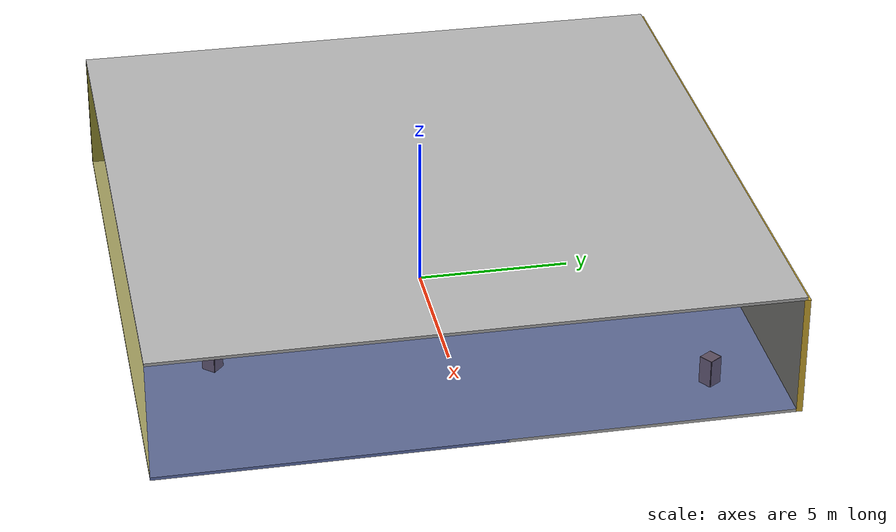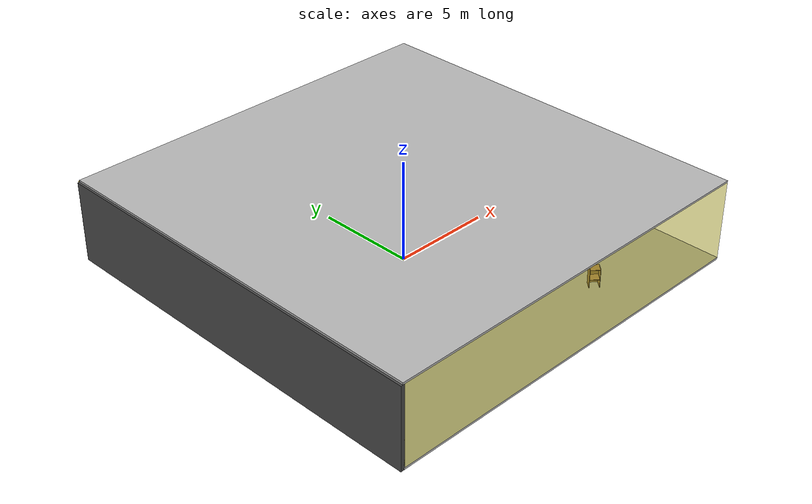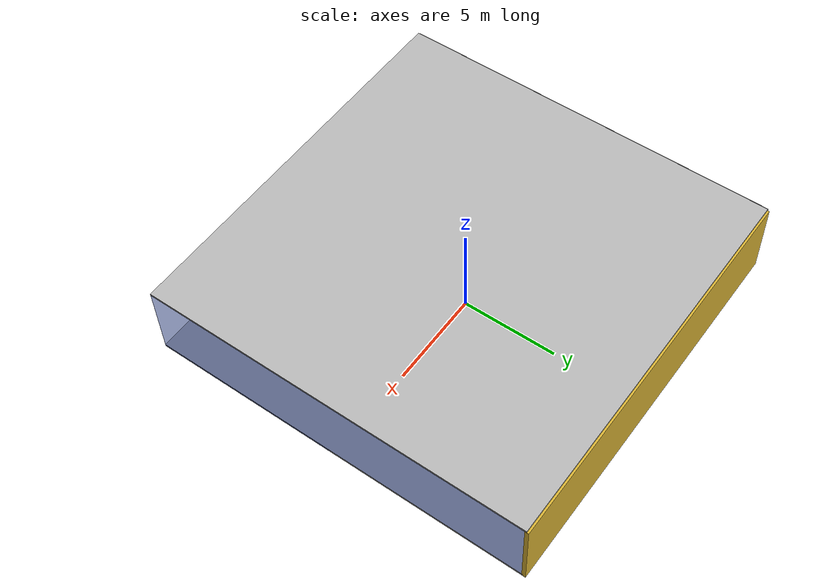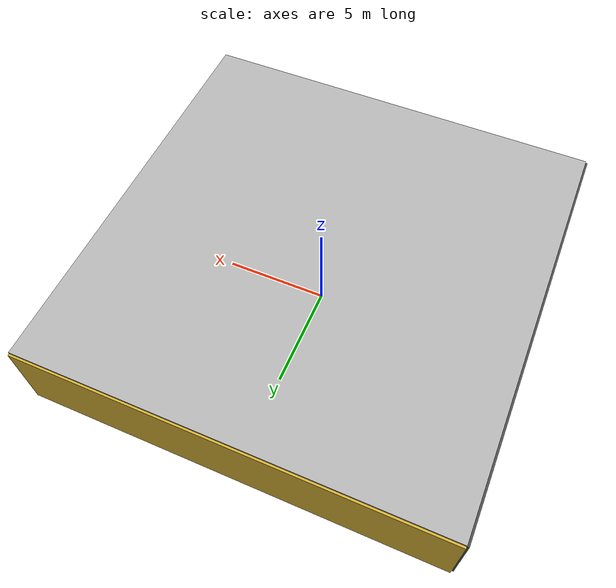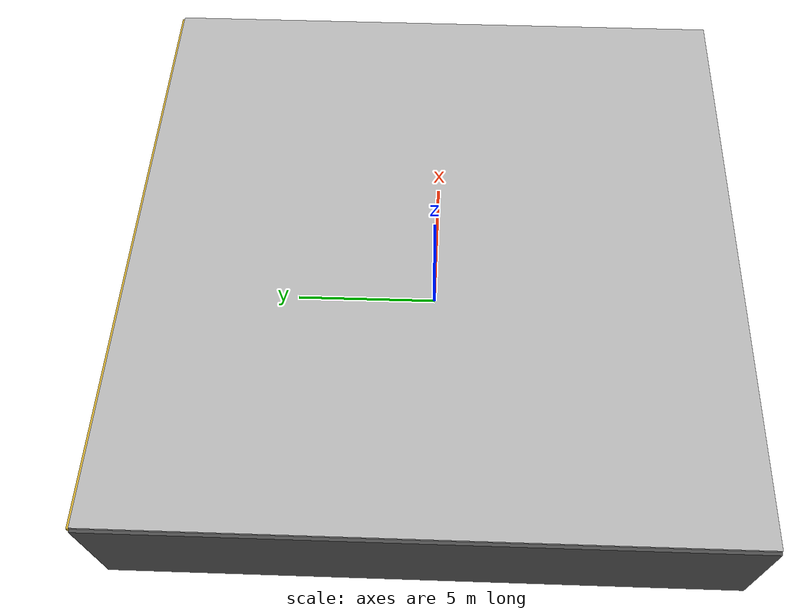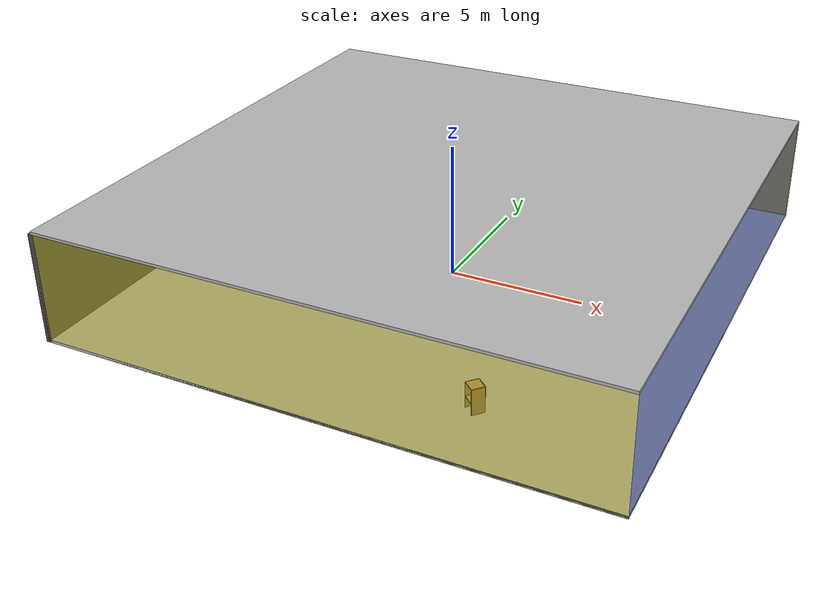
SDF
<sdf version="1.4">
 <world name="default">
  <physics type="ode">
   <max_step_size>0.001</max_step_size>
   <real_time_factor>1</real_time_factor>
   <real_time_update_rate>1000</real_time_update_rate>
   <gravity>0 0 -9.8</gravity>
  </physics>
  <scene><ambient>0.4 0.4 0.4 1</ambient><background>0.7 0.7 0.7 1</background><shadows>1</shadows></scene>
  <model name="Surrounding">
   <static>1</static>
   <link name="Ceiling">
    <collision name="Ceiling_Collision"><geometry><box><size>20 20 0.1</size></box></geometry></collision>
    <visual name="Ceiling_Visual">
     <geometry><box><size>20 20 0.1</size></box></geometry>
     <material>
      <script><uri>file://media/materials/scripts/gazebo.material</uri><name>Gazebo/JointAnchor</name></script>
     </material>
    </visual>
    <pose>0 0 4.05 0 0 0</pose>
   </link>
   <link name="Wall_South">
    <collision name="Wall_South_Collision">
     <geometry><box><size>20 0 4</size></box></geometry>
     <pose>0 0 2 0 -0 0</pose>
    </collision>
    <visual name="Wall_South_Visual">
     <pose>0 0 2 0 -0 0</pose>
     <geometry><box><size>20 0 4</size></box></geometry>
     <material>
      <script>
       <uri>file://media/materials/scripts/gazebo.material</uri>
       <name>Gazebo/YellowTransparent</name>
      </script>
     </material>
    </visual>
    <velocity_decay><linear>0</linear><angular>0</angular></velocity_decay>
    <pose>0 -10 0 0 -0 0</pose>
   </link>
   <link name="Wall_East">
    <collision name="Wall_21_Collision">
     <geometry><box><size>20 0 4</size></box></geometry>
     <pose>0 0 2 0 -0 0</pose>
    </collision>
    <visual name="Wall_21_Visual">
     <pose>0 0 2 0 -0 0</pose>
     <geometry><box><size>20 0 4</size></box></geometry>
     <material>
      <script><uri>file://media/materials/scripts/gazebo.material</uri><name>Gazebo/BlueTransparent</name></script>
     </material>
    </visual>
    <velocity_decay><linear>0</linear><angular>0</angular></velocity_decay>
    <pose>10 0 0 0 -0 1.5708</pose>
   </link>
   <link name="Wall_North">
    <collision name="Wall_22_Collision">
     <geometry><box><size>20 0.2 4</size></box></geometry>
     <pose>0 0 2 0 -0 0</pose>
    </collision>
    <visual name="Wall_22_Visual">
     <pose>0 0 2 0 -0 0</pose>
     <geometry><box><size>20 0.2 4</size></box></geometry>
     <material>
      <script><uri>file://media/materials/scripts/gazebo.material</uri><name>Gazebo/Gold</name></script>
     </material>
    </visual>
    <velocity_decay><linear>0</linear><angular>0</angular></velocity_decay>
    <pose>0 10 0 0 -0 0</pose>
   </link>
   <link name="Wall_West">
    <collision name="Wall_23_Collision">
     <geometry><box><size>20 0.2 4</size></box></geometry>
     <pose>0 0 2 0 -0 0</pose>
    </collision>
    <visual name="Wall_23_Visual">
     <pose>0 0 2 0 -0 0</pose>
     <geometry><box><size>20 0.2 4</size></box></geometry>
     <material>
      <script><uri>file://media/materials/scripts/gazebo.material</uri><name>Gazebo/DarkGrey</name></script>
     </material>
    </visual>
    <velocity_decay><linear>0</linear><angular>0</angular></velocity_decay>
    <pose>-10 0 0 0 0 -1.5708</pose>
   </link>
   <link name="Ground_link">
    <collision name="collision">
     <pose>0 0 .05 0 -0 0</pose>
     <geometry><box><size>20 20 0.1</size></box></geometry>
    </collision>
    <visual name="visual">
     <pose>0 0 .05 0 -0 0</pose>
     <geometry><box><size>20 20 0.1</size></box></geometry>
     <material>
      <script><uri>file://media/materials/scripts/gazebo.material</uri><name>Gazebo/Pioneer2Body</name></script>
     </material>
    </visual>
   </link>
   <static>1</static>
  </model>
  <spherical_coordinates>
   <surface_model>EARTH_WGS84</surface_model>
   <latitude_deg>0</latitude_deg>
   <longitude_deg>0</longitude_deg>
   <elevation>0</elevation>
   <heading_deg>0</heading_deg>
  </spherical_coordinates>
  <light name="lightball_0" type="diffuse">
   <diffuse>0.8 0.8 0.8 1</diffuse>
   <specular>0.2 0.2 0.2 1</specular>
   <attenuation>
    <range>100</range>
    <constant>0.7</constant>
    <linear>0.01</linear>
    <quadratic>0.001</quadratic>
   </attenuation>
   <direction>-0.5 0.1 -0.9</direction>
   <pose>-8.51337061033 -4.0215625818 1.47221241157 0 0 0</pose>
  </light>
  <light name="lightball_1" type="diffuse">
   <diffuse>0.8 0.8 0.8 1</diffuse>
   <specular>0.2 0.2 0.2 1</specular>
   <attenuation>
    <range>100</range>
    <constant>0.7</constant>
    <linear>0.01</linear>
    <quadratic>0.001</quadratic>
   </attenuation>
   <direction>-0.5 0.1 -0.9</direction>
   <pose>-2.34088809492 7.23909209424 3.74681462518 0 0 0</pose>
  </light>
  <light name="lightball_2" type="diffuse">
   <diffuse>0.8 0.8 0.8 1</diffuse>
   <specular>0.2 0.2 0.2 1</specular>
   <attenuation>
    <range>100</range>
    <constant>0.7</constant>
    <linear>0.01</linear>
    <quadratic>0.001</quadratic>
   </attenuation>
   <direction>-0.5 0.1 -0.9</direction>
   <pose>-7.33057111157 4.83647247057 2.58952575034 0 0 0</pose>
  </light>
  <light name="lightball_3" type="diffuse">
   <diffuse>0.8 0.8 0.8 1</diffuse>
   <specular>0.2 0.2 0.2 1</specular>
   <attenuation>
    <range>100</range>
    <constant>0.7</constant>
    <linear>0.01</linear>
    <quadratic>0.001</quadratic>
   </attenuation>
   <direction>-0.5 0.1 -0.9</direction>
   <pose>-9.97470775922 -7.15487826932 1.21574383395 0 0 0</pose>
  </light>
  <light name="lightball_4" type="diffuse">
   <diffuse>0.8 0.8 0.8 1</diffuse>
   <specular>0.2 0.2 0.2 1</specular>
   <attenuation>
    <range>100</range>
    <constant>0.7</constant>
    <linear>0.01</linear>
    <quadratic>0.001</quadratic>
   </attenuation>
   <direction>-0.5 0.1 -0.9</direction>
   <pose>-2.88318968366 -6.98094494032 3.27798069098 0 0 0</pose>
  </light>
  <light name="lightball_5" type="diffuse">
   <diffuse>0.8 0.8 0.8 1</diffuse>
   <specular>0.2 0.2 0.2 1</specular>
   <attenuation>
    <range>100</range>
    <constant>0.7</constant>
    <linear>0.01</linear>
    <quadratic>0.001</quadratic>
   </attenuation>
   <direction>-0.5 0.1 -0.9</direction>
   <pose>4.48206748561 -8.7021836739 1.64197553949 0 0 0</pose>
  </light>
  <light name="lightball_6" type="diffuse">
   <diffuse>0.8 0.8 0.8 1</diffuse>
   <specular>0.2 0.2 0.2 1</specular>
   <attenuation>
    <range>100</range>
    <constant>0.7</constant>
    <linear>0.01</linear>
    <quadratic>0.001</quadratic>
   </attenuation>
   <direction>-0.5 0.1 -0.9</direction>
   <pose>-7.96039455964 3.61821453056 3.57173690663 0 0 0</pose>
  </light>
  <light name="lightball_7" type="diffuse">
   <diffuse>0.8 0.8 0.8 1</diffuse>
   <specular>0.2 0.2 0.2 1</specular>
   <attenuation>
    <range>100</range>
    <constant>0.7</constant>
    <linear>0.01</linear>
    <quadratic>0.001</quadratic>
   </attenuation>
   <direction>-0.5 0.1 -0.9</direction>
   <pose>-1.00785211351 -2.6155886452 1.53612912353 0 0 0</pose>
  </light>
  <light name="lightball_8" type="diffuse">
   <diffuse>0.8 0.8 0.8 1</diffuse>
   <specular>0.2 0.2 0.2 1</specular>
   <attenuation>
    <range>100</range>
    <constant>0.7</constant>
    <linear>0.01</linear>
    <quadratic>0.001</quadratic>
   </attenuation>
   <direction>-0.5 0.1 -0.9</direction>
   <pose>-3.58026563653 -8.18315225358 1.56068922704 0 0 0</pose>
  </light>
  <light name="lightball_9" type="diffuse">
   <diffuse>0.8 0.8 0.8 1</diffuse>
   <specular>0.2 0.2 0.2 1</specular>
   <attenuation>
    <range>100</range>
    <constant>0.7</constant>
    <linear>0.01</linear>
    <quadratic>0.001</quadratic>
   </attenuation>
   <direction>-0.5 0.1 -0.9</direction>
   <pose>9.12114113647 -2.25052609452 0.579546834818 0 0 0</pose>
  </light>
  <light name="lightball_10" type="diffuse">
   <diffuse>0.8 0.8 0.8 1</diffuse>
   <specular>0.2 0.2 0.2 1</specular>
   <attenuation>
    <range>100</range>
    <constant>0.7</constant>
    <linear>0.01</linear>
    <quadratic>0.001</quadratic>
   </attenuation>
   <direction>-0.5 0.1 -0.9</direction>
   <pose>5.86786258473 0.342459117752 2.91959180335 0 0 0</pose>
  </light>
  <include><uri>model://cabinet</uri><pose>-4.64293873862 5.05899644401 0 0 0 1.97030561134</pose></include>
  <include>
   <uri>model://construction_cone</uri>
   <pose>-2.24445394699 1.48927992824 0 0 0 2.40930947018</pose>
  </include>
  <include>
   <uri>model://robocup_3Dsim_goal</uri>
   <pose>2.01195521468 2.01714431043 0 0 0 0.430980235935</pose>
  </include>
  <include><uri>model://cabinet</uri><pose>1.39578921276 6.91751372614 0 0 0 1.60578848354</pose></include>
  <include><uri>model://cabinet</uri><pose>4.32263092563 -7.43647550776 0 0 0 0.845147637665</pose></include>
  <include><uri>model://cabinet</uri><pose>8.00940710357 7.6902053356 0 0 0 0.585691843349</pose></include>
 </world>
</sdf>

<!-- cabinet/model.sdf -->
<sdf version="1.5">
  <model name="cabinet">
    <static>true</static>
    <link name="cabinet_bottom_plate">
      <inertial>
        <pose>0 0 -1 0 0 0</pose>
        <inertia>
          <ixx>2.050000</ixx>
          <ixy>0</ixy>
          <ixz>0</ixz>
          <iyy>2.050000</iyy>
          <iyz>0</iyz>
          <izz>2.050000</izz>
        </inertia>
        <mass>25.000000</mass>
      </inertial>
      <collision name="cabinet_bottom_plate_geom">
        <pose>0 0 0.010000 0 0 0</pose>
        <geometry>
          <box>
            <size>0.450000 0.450000 0.020000</size>
          </box>
        </geometry>
      </collision>
      <visual name="cabinet_bottom_plate_geom_visual">
        <pose>0 0 0.010000 0 0 0</pose>
        <geometry>
          <box>
            <size>0.450000 0.450000 0.020000</size>
          </box>
        </geometry>
        <material>
          <script>
            <uri>model://media/materials/scripts/gazebo.material</uri>
            <name>Gazebo/Wood</name>
          </script>
        </material>
      </visual>
      <collision name="cabinet_bottom_plate_geom_cabinet_back_plate">
        <pose>0.235000 0 0.510000 0 0 0</pose>
        <geometry>
          <box>
            <size>0.020000 0.450000 1.020000</size>
          </box>
        </geometry>
      </collision>
      <visual name="cabinet_bottom_plate_geom_cabinet_back_plate_visual">
        <pose>0.235000 0 0.510000 0 0 0</pose>
        <geometry>
          <box>
            <size>0.020000 0.450000 1.020000</size>
          </box>
        </geometry>
        <material>
          <script>
            <uri>model://media/materials/scripts/gazebo.material</uri>
            <name>Gazebo/Wood</name>
          </script>
        </material>
      </visual>
      <collision name="cabinet_bottom_plate_geom_cabinet_left_plate">
        <pose>0 0.235000 0.510000 0 0 0</pose>
        <geometry>
          <box>
            <size>0.450000 0.020000 1.020000</size>
          </box>
        </geometry>
      </collision>
      <visual name="cabinet_bottom_plate_geom_cabinet_left_plate_visual">
        <pose>0 0.235000 0.510000 0 0 0</pose>
        <geometry>
          <box>
            <size>0.450000 0.020000 1.020000</size>
          </box>
        </geometry>
        <material>
          <script>
            <uri>model://media/materials/scripts/gazebo.material</uri>
            <name>Gazebo/Wood</name>
          </script>
        </material>
      </visual>
      <collision name="cabinet_bottom_plate_geom_cabinet_middle_plate">
        <pose>0 0 0.510000 0 0 0</pose>
        <geometry>
          <box>
            <size>0.450000 0.450000 0.020000</size>
          </box>
        </geometry>
      </collision>
      <visual name="cabinet_bottom_plate_geom_cabinet_middle_plate_visual">
        <pose>0 0 0.510000 0 0 0</pose>
        <geometry>
          <box>
            <size>0.450000 0.450000 0.020000</size>
          </box>
        </geometry>
        <material>
          <script>
            <uri>model://media/materials/scripts/gazebo.material</uri>
            <name>Gazebo/Wood</name>
          </script>
        </material>
      </visual>
      <collision name="cabinet_bottom_plate_geom_cabinet_right_plate">
        <pose>0 -0.235000 0.510000 0 0 0</pose>
        <geometry>
          <box>
            <size>0.450000 0.020000 1.020000</size>
          </box>
        </geometry>
      </collision>
      <visual name="cabinet_bottom_plate_geom_cabinet_right_plate_visual">
        <pose>0 -0.235000 0.510000 0 0 0</pose>
        <geometry>
          <box>
            <size>0.450000 0.020000 1.020000</size>
          </box>
        </geometry>
        <material>
          <script>
            <uri>model://media/materials/scripts/gazebo.material</uri>
            <name>Gazebo/Wood</name>
          </script>
        </material>
      </visual>
      <collision name="cabinet_bottom_plate_geom_cabinet_top_plate">
        <pose>0 0 1.010000 0 0 0</pose>
        <geometry>
          <box>
            <size>0.450000 0.450000 0.020000</size>
          </box>
        </geometry>
      </collision>
      <visual name="cabinet_bottom_plate_geom_cabinet_top_plate_visual">
        <pose>0 0 1.010000 0 0 0</pose>
        <geometry>
          <box>
            <size>0.450000 0.450000 0.020000</size>
          </box>
        </geometry>
        <material>
          <script>
            <uri>model://media/materials/scripts/gazebo.material</uri>
            <name>Gazebo/Wood</name>
          </script>
        </material>
      </visual>
    </link>
  </model>
</sdf>

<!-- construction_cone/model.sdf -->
<sdf version="1.5">
  <model name="Construction Cone">
    <link name="link">
      <collision name="collision">
        <geometry>
          <mesh>
            <scale>10 10 10</scale>
            <uri>file://isr-testbed/construction_cone/meshes/construction_cone.dae</uri>
          </mesh>
        </geometry>
      </collision>
      <visual name="visual">
        <geometry>
          <mesh>
            <scale>10 10 10</scale>
            <uri>file://isr-testbed/construction_cone/meshes/construction_cone.dae</uri>
          </mesh>
        </geometry>
      </visual>
    </link>
  </model>
</sdf>

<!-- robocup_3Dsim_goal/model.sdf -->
<sdf version="1.5">
  <model name="robocup_3d_goal">
    <static>true</static>
    <link name="left_post">
      <pose>0 1.05 0.45 0 0 0</pose>
      <collision name="collision">
        <geometry>
          <cylinder>
            <radius>0.05</radius>
            <length>0.9</length>
          </cylinder>
        </geometry>
      </collision>
      <visual name="visual">
        <geometry>
          <cylinder>
            <radius>0.05</radius>
            <length>0.9</length>
          </cylinder>
        </geometry>
        <material>
          <script>
            <uri>file://media/materials/scripts/gazebo.material</uri>
            <name>Gazebo/ZincYellow</name>
          </script>
        </material>
      </visual>
    </link>
    <link name="left_support_horiz_lower">
      <pose>0.30 1.05 0.01 0 0 0</pose>
      <collision name="collision">
        <geometry>
          <box>
            <size>0.50 0.02 0.02</size>
          </box>
        </geometry>
      </collision>
      <visual name="visual">
        <geometry>
          <box>
            <size>0.50 0.02 0.02</size>
          </box>
        </geometry>
        <material>
          <script>
            <uri>file://media/materials/scripts/gazebo.material</uri>
            <name>Gazebo/White</name>
          </script>
        </material>
      </visual>
    </link>
    <link name="left_support_horiz_upper">
      <pose>0.30 1.05 0.79 0 0 0</pose>
      <collision name="collision">
        <geometry>
          <box>
            <size>0.50 0.02 0.02</size>
          </box>
        </geometry>
      </collision>
      <visual name="visual">
        <geometry>
          <box>
            <size>0.50 0.02 0.02</size>
          </box>
        </geometry>
        <material>
          <script>
            <uri>file://media/materials/scripts/gazebo.material</uri>
            <name>Gazebo/White</name>
          </script>
        </material>
      </visual>
    </link>
    <link name="left_support_vertical">
      <pose>0.56 1.05 0.4 0 1.5708 0</pose>
      <collision name="collision">
        <geometry>
          <box>
            <size>0.80 0.02 0.02</size>
          </box>
        </geometry>
      </collision>
      <visual name="visual">
        <geometry>
          <box>
            <size>0.80 0.02 0.02</size>
          </box>
        </geometry>
        <material>
          <script>
            <uri>file://media/materials/scripts/gazebo.material</uri>
            <name>Gazebo/White</name>
          </script>
        </material>
      </visual>
    </link>
    <link name="right_support_horiz_lower">
      <pose>0.30 -1.05 0.01 0 0 0</pose>
      <collision name="collision">
        <geometry>
          <box>
            <size>0.50 0.02 0.02</size>
          </box>
        </geometry>
      </collision>
      <visual name="visual">
        <geometry>
          <box>
            <size>0.50 0.02 0.02</size>
          </box>
        </geometry>
        <material>
          <script>
            <uri>file://media/materials/scripts/gazebo.material</uri>
            <name>Gazebo/White</name>
          </script>
        </material>
      </visual>
    </link>
    <link name="right_support_horiz_upper">
      <pose>0.30 -1.05 0.79 0 0 0</pose>
      <collision name="collision">
        <geometry>
          <box>
            <size>0.50 0.02 0.02</size>
          </box>
        </geometry>
      </collision>
      <visual name="visual">
        <geometry>
          <box>
            <size>0.50 0.02 0.02</size>
          </box>
        </geometry>
        <material>
          <script>
            <uri>file://media/materials/scripts/gazebo.material</uri>
            <name>Gazebo/White</name>
          </script>
        </material>
      </visual>
    </link>
    <link name="right_support_vertical">
      <pose>0.56 -1.05 0.4 0 1.5708 0</pose>
      <collision name="collision">
        <geometry>
          <box>
            <size>0.80 0.02 0.02</size>
          </box>
        </geometry>
      </collision>
      <visual name="visual">
        <geometry>
          <box>
            <size>0.80 0.02 0.02</size>
          </box>
        </geometry>
        <material>
          <script>
            <uri>file://media/materials/scripts/gazebo.material</uri>
            <name>Gazebo/White</name>
          </script>
        </material>
      </visual>
    </link>
    <link name="center_support_horiz_lower">
      <pose>0.56 0 0.01 0 1.5708 0</pose>
      <collision name="collision">
        <geometry>
          <box>
            <size>0.02 2.08 0.02</size>
          </box>
        </geometry>
      </collision>
      <visual name="visual">
        <geometry>
          <box>
            <size>0.02 2.08 0.02</size>
          </box>
        </geometry>
        <material>
          <script>
            <uri>file://media/materials/scripts/gazebo.material</uri>
            <name>Gazebo/White</name>
          </script>
        </material>
      </visual>
    </link>
    <link name="center_support_horiz_upper">
      <pose>0.56 0 0.79 0 1.5708 0</pose>
      <collision name="collision">
        <geometry>
          <box>
            <size>0.02 2.08 0.02</size>
          </box>
        </geometry>
      </collision>
      <visual name="visual">
        <geometry>
          <box>
            <size>0.02 2.08 0.02</size>
          </box>
        </geometry>
        <material>
          <script>
            <uri>file://media/materials/scripts/gazebo.material</uri>
            <name>Gazebo/White</name>
          </script>
        </material>
      </visual>
    </link>
    <link name="right_post">
      <pose>0 -1.05 0.45 0 0 0</pose>
      <collision name="collision">
        <geometry>
          <cylinder>
            <radius>0.05</radius>
            <length>0.9</length>
          </cylinder>
        </geometry>
      </collision>
      <visual name="visual">
        <geometry>
          <cylinder>
            <radius>0.05</radius>
            <length>0.9</length>
          </cylinder>
        </geometry>
        <material>
          <script>
            <uri>file://media/materials/scripts/gazebo.material</uri>
            <name>Gazebo/ZincYellow</name>
          </script>
        </material>
      </visual>
    </link>
    <link name="crossbar">
      <pose>0 0 0.85 1.57 1.57 0</pose>
      <collision name="collision">
        <geometry>
          <cylinder>
            <radius>0.05</radius>
            <length>2.0</length>
          </cylinder>
        </geometry>
      </collision>
      <visual name="visual">
        <geometry>
          <cylinder>
            <radius>0.05</radius>
            <length>2.0</length>
          </cylinder>
        </geometry>
        <material>
          <script>
            <uri>file://media/materials/scripts/gazebo.material</uri>
            <name>Gazebo/ZincYellow</name>
          </script>
        </material>
      </visual>
    </link>
    <link name="center_net">
      <pose>0.56 0 0.40 0 0 0</pose>
      <collision name="collision">
        <geometry>
          <box>
            <size>0.01 2.1 0.80</size>
          </box>
        </geometry>
      </collision>
      <visual name="visual">
        <geometry>
          <box>
            <size>0.01 2.1 0.80</size>
          </box>
        </geometry>
        <material>
          <script>
            <uri>model://../model_source/models/robocup09_spl_field/materials/scripts/</uri>
            <uri>model://../model_source/models/robocup09_spl_field/materials/textures/</uri>
            <name>RoboCup/Net</name>
          </script>
        </material>
      </visual>
    </link>
    <link name="left_net">
      <pose>0.30 1.05 0.40 0 0 0</pose>
      <collision name="collision">
        <geometry>
          <box>
            <size>0.50 0.01 0.76</size>
          </box>
        </geometry>
      </collision>
      <visual name="visual">
        <geometry>
          <box>
            <size>0.50 0.01 0.76</size>
          </box>
        </geometry>
        <material>
          <script>
            <uri>model://../model_source/models/robocup09_spl_field/materials/scripts/</uri>
            <uri>model://../model_source/models/robocup09_spl_field/materials/textures/</uri>
            <name>RoboCup/Net</name>
          </script>
        </material>
      </visual>
    </link>
    <link name="right_net">
      <pose>0.30 -1.05 0.40 0 0 0</pose>
      <collision name="collision">
        <geometry>
          <box>
            <size>0.50 0.01 0.76</size>
          </box>
        </geometry>
      </collision>
      <visual name="visual">
        <geometry>
          <box>
            <size>0.50 0.01 0.76</size>
          </box>
        </geometry>
        <material>
          <script>
            <uri>model://../model_source/models/robocup09_spl_field/materials/scripts/</uri>
            <uri>model://../model_source/models/robocup09_spl_field/materials/textures/</uri>
            <name>RoboCup/Net</name>
          </script>
        </material>
      </visual>
    </link>
  </model>
</sdf>
